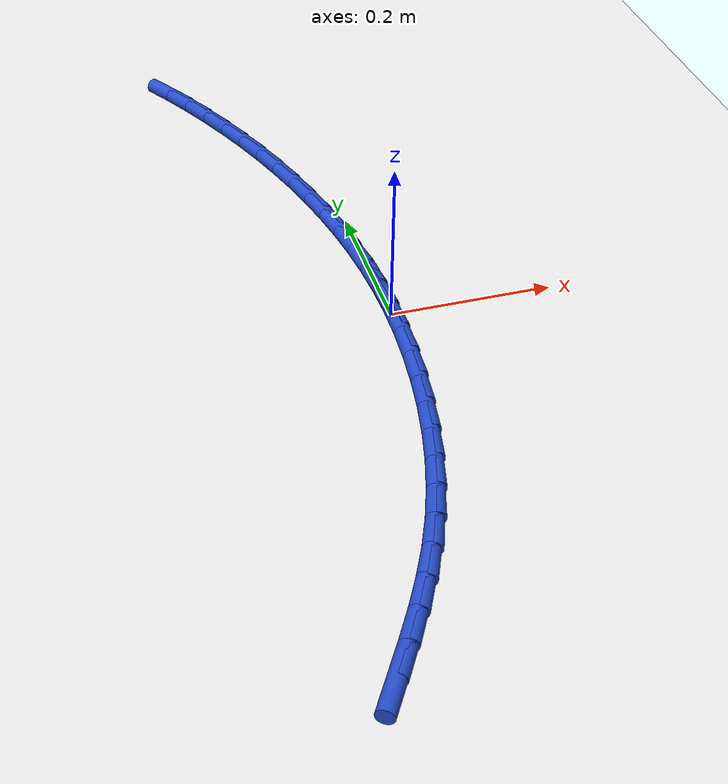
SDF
<sdf version="1.6">
 <world name="default">
  <model name="ground_plane">
   <static>1</static>
   <link name="link">
    <collision name="collision">
     <geometry><plane><normal>0 0 1</normal><size>100 100</size></plane></geometry>
     <surface><friction><ode><mu>100</mu><mu2>50</mu2></ode></friction></surface>
    </collision>
    <visual name="visual">
     <cast_shadows>0</cast_shadows>
     <geometry><plane><normal>0 0 1</normal><size>100 100</size></plane></geometry>
     <material>
      <script><uri>file://media/materials/scripts/gazebo.material</uri><name>Gazebo/WhiteGlow</name></script>
     </material>
    </visual>
   </link>
  </model>
  <model name="line">
   <link name="link_0">
    <pose>4.336808689942018e-18 -4.163336342344337e-17 0.01 0 1.57 -1.5419361502482747</pose>
    <collision name="collision">
     <geometry><cylinder><radius>0.01</radius><length>0.08</length></cylinder></geometry>
    </collision>
    <visual name="visual">
     <material>
      <script><name>Gazebo/Blue</name><uri>file://media/materials/scripts/gazebo.material</uri></script>
     </material>
     <geometry><cylinder><radius>0.01</radius><length>0.08</length></cylinder></geometry>
    </visual>
   </link>
   <link name="link_1">
    <pose>-0.001241835568871606 0.0430174350707382 0.01 0 1.57 -1.4992616446270697</pose>
    <collision name="collision">
     <geometry><cylinder><radius>0.01</radius><length>0.08</length></cylinder></geometry>
    </collision>
    <visual name="visual">
     <material>
      <script><name>Gazebo/Blue</name><uri>file://media/materials/scripts/gazebo.material</uri></script>
     </material>
     <geometry><cylinder><radius>0.01</radius><length>0.08</length></cylinder></geometry>
    </visual>
   </link>
   <link name="link_2">
    <pose>-0.0042969841570499896 0.08565319491945013 0.01 0 1.57 -1.457431250953014</pose>
    <collision name="collision">
     <geometry><cylinder><radius>0.01</radius><length>0.08</length></cylinder></geometry>
    </collision>
    <visual name="visual">
     <material>
      <script><name>Gazebo/Blue</name><uri>file://media/materials/scripts/gazebo.material</uri></script>
     </material>
     <geometry><cylinder><radius>0.01</radius><length>0.08</length></cylinder></geometry>
    </visual>
   </link>
   <link name="link_3">
    <pose>-0.009108326376786758 0.12791235886338106 0.01 0 1.57 -1.4166043514242672</pose>
    <collision name="collision">
     <geometry><cylinder><radius>0.01</radius><length>0.08</length></cylinder></geometry>
    </collision>
    <visual name="visual">
     <material>
      <script><name>Gazebo/Blue</name><uri>file://media/materials/scripts/gazebo.material</uri></script>
     </material>
     <geometry><cylinder><radius>0.01</radius><length>0.08</length></cylinder></geometry>
    </visual>
   </link>
   <link name="link_4">
    <pose>-0.015618742840333556 0.16980000621977662 0.01 0 1.57 -1.3769202140500478</pose>
    <collision name="collision">
     <geometry><cylinder><radius>0.01</radius><length>0.08</length></cylinder></geometry>
    </collision>
    <visual name="visual">
     <material>
      <script><name>Gazebo/Blue</name><uri>file://media/materials/scripts/gazebo.material</uri></script>
     </material>
     <geometry><cylinder><radius>0.01</radius><length>0.08</length></cylinder></geometry>
    </visual>
   </link>
   <link name="link_5">
    <pose>-0.023771114159941986 0.21132121630588213 0.01 0 1.57 -1.3384965799225563</pose>
    <collision name="collision">
     <geometry><cylinder><radius>0.01</radius><length>0.08</length></cylinder></geometry>
    </collision>
    <visual name="visual">
     <material>
      <script><name>Gazebo/Blue</name><uri>file://media/materials/scripts/gazebo.material</uri></script>
     </material>
     <geometry><cylinder><radius>0.01</radius><length>0.08</length></cylinder></geometry>
    </visual>
   </link>
   <link name="link_6">
    <pose>-0.03350832094786368 0.2524810684389431 0.01 0 1.57 -1.3014292340319913</pose>
    <collision name="collision">
     <geometry><cylinder><radius>0.01</radius><length>0.08</length></cylinder></geometry>
    </collision>
    <visual name="visual">
     <material>
      <script><name>Gazebo/Blue</name><uri>file://media/materials/scripts/gazebo.material</uri></script>
     </material>
     <geometry><cylinder><radius>0.01</radius><length>0.08</length></cylinder></geometry>
    </visual>
   </link>
   <link name="link_7">
    <pose>-0.04477324381635026 0.293284641936205 0.01 0 1.57 -1.2657924447633824</pose>
    <collision name="collision">
     <geometry><cylinder><radius>0.01</radius><length>0.08</length></cylinder></geometry>
    </collision>
    <visual name="visual">
     <material>
      <script><name>Gazebo/Blue</name><uri>file://media/materials/scripts/gazebo.material</uri></script>
     </material>
     <geometry><cylinder><radius>0.01</radius><length>0.08</length></cylinder></geometry>
    </visual>
   </link>
   <link name="link_8">
    <pose>-0.05750876337765335 0.33373701611491324 0.01 0 1.57 -1.2315676038876533</pose>
    <collision name="collision">
     <geometry><cylinder><radius>0.01</radius><length>0.08</length></cylinder></geometry>
    </collision>
    <visual name="visual">
     <material>
      <script><name>Gazebo/Blue</name><uri>file://media/materials/scripts/gazebo.material</uri></script>
     </material>
     <geometry><cylinder><radius>0.01</radius><length>0.08</length></cylinder></geometry>
    </visual>
   </link>
   <link name="link_9">
    <pose>-0.07165866310954422 0.3738365618099308 0.01 0 1.57 -1.1981974402237439</pose>
    <collision name="collision">
     <geometry><cylinder><radius>0.01</radius><length>0.08</length></cylinder></geometry>
    </collision>
    <visual name="visual">
     <material>
      <script><name>Gazebo/Blue</name><uri>file://media/materials/scripts/gazebo.material</uri></script>
     </material>
     <geometry><cylinder><radius>0.01</radius><length>0.08</length></cylinder></geometry>
    </visual>
   </link>
   <link name="link_10">
    <pose>-0.08717352553571332 0.4135311315023082 0.01 0 1.57 -1.165316105262385</pose>
    <collision name="collision">
     <geometry><cylinder><radius>0.01</radius><length>0.08</length></cylinder></geometry>
    </collision>
    <visual name="visual">
     <material>
      <script><name>Gazebo/Blue</name><uri>file://media/materials/scripts/gazebo.material</uri></script>
     </material>
     <geometry><cylinder><radius>0.01</radius><length>0.08</length></cylinder></geometry>
    </visual>
   </link>
   <link name="link_11">
    <pose>-0.10400703066744613 0.4527455626830358 0.01 0 1.57 -1.132789994508953</pose>
    <collision name="collision">
     <geometry><cylinder><radius>0.01</radius><length>0.08</length></cylinder></geometry>
    </collision>
    <visual name="visual">
     <material>
      <script><name>Gazebo/Blue</name><uri>file://media/materials/scripts/gazebo.material</uri></script>
     </material>
     <geometry><cylinder><radius>0.01</radius><length>0.08</length></cylinder></geometry>
    </visual>
   </link>
   <link name="link_12">
    <pose>-0.12211287423397113 0.49140457605545124 0.01 0 1.57 -1.1004872258329634</pose>
    <collision name="collision">
     <geometry><cylinder><radius>0.01</radius><length>0.08</length></cylinder></geometry>
    </collision>
    <visual name="visual">
     <material>
      <script><name>Gazebo/Blue</name><uri>file://media/materials/scripts/gazebo.material</uri></script>
     </material>
     <geometry><cylinder><radius>0.01</radius><length>0.08</length></cylinder></geometry>
    </visual>
   </link>
   <link name="link_13">
    <pose>-0.14144475196451692 0.5294328923228926 0.01 0 1.57 -1.0682757105273728</pose>
    <collision name="collision">
     <geometry><cylinder><radius>0.01</radius><length>0.08</length></cylinder></geometry>
    </collision>
    <visual name="visual">
     <material>
      <script><name>Gazebo/Blue</name><uri>file://media/materials/scripts/gazebo.material</uri></script>
     </material>
     <geometry><cylinder><radius>0.01</radius><length>0.08</length></cylinder></geometry>
    </visual>
   </link>
   <link name="link_14">
    <pose>-0.16195635958831195 0.5667552321886977 0.01 0 1.57 -1.036022394601772</pose>
    <collision name="collision">
     <geometry><cylinder><radius>0.01</radius><length>0.08</length></cylinder></geometry>
    </collision>
    <visual name="visual">
     <material>
      <script><name>Gazebo/Blue</name><uri>file://media/materials/scripts/gazebo.material</uri></script>
     </material>
     <geometry><cylinder><radius>0.01</radius><length>0.08</length></cylinder></geometry>
    </visual>
   </link>
   <link name="link_167">
    <pose>-0.15122825440765614 -0.5099026027851683 0.01 0 1.57 1.0141885390010972</pose>
    <collision name="collision">
     <geometry><cylinder><radius>0.01</radius><length>0.08</length></cylinder></geometry>
    </collision>
    <visual name="visual">
     <material>
      <script><name>Gazebo/Blue</name><uri>file://media/materials/scripts/gazebo.material</uri></script>
     </material>
     <geometry><cylinder><radius>0.01</radius><length>0.08</length></cylinder></geometry>
    </visual>
   </link>
   <link name="link_168">
    <pose>-0.12944939169763944 -0.47490152004638836 0.01 0 1.57 1.035071414281225</pose>
    <collision name="collision">
     <geometry><cylinder><radius>0.01</radius><length>0.08</length></cylinder></geometry>
    </collision>
    <visual name="visual">
     <material>
      <script><name>Gazebo/Blue</name><uri>file://media/materials/scripts/gazebo.material</uri></script>
     </material>
     <geometry><cylinder><radius>0.01</radius><length>0.08</length></cylinder></geometry>
    </visual>
   </link>
   <link name="link_169">
    <pose>-0.10902998574507496 -0.44050417784824303 0.01 0 1.57 1.068428209791736</pose>
    <collision name="collision">
     <geometry><cylinder><radius>0.01</radius><length>0.08</length></cylinder></geometry>
    </collision>
    <visual name="visual">
     <material>
      <script><name>Gazebo/Blue</name><uri>file://media/materials/scripts/gazebo.material</uri></script>
     </material>
     <geometry><cylinder><radius>0.01</radius><length>0.08</length></cylinder></geometry>
    </visual>
   </link>
   <link name="link_170">
    <pose>-0.09010302420275382 -0.40605276903844195 0.01 0 1.57 1.1135418270483937</pose>
    <collision name="collision">
     <geometry><cylinder><radius>0.01</radius><length>0.08</length></cylinder></geometry>
    </collision>
    <visual name="visual">
     <material>
      <script><name>Gazebo/Blue</name><uri>file://media/materials/scripts/gazebo.material</uri></script>
     </material>
     <geometry><cylinder><radius>0.01</radius><length>0.08</length></cylinder></geometry>
    </visual>
   </link>
   <link name="link_171">
    <pose>-0.07280149472346807 -0.3708894864646965 0.01 0 1.57 1.1685230075346522</pose>
    <collision name="collision">
     <geometry><cylinder><radius>0.01</radius><length>0.08</length></cylinder></geometry>
    </collision>
    <visual name="visual">
     <material>
      <script><name>Gazebo/Blue</name><uri>file://media/materials/scripts/gazebo.material</uri></script>
     </material>
     <geometry><cylinder><radius>0.01</radius><length>0.08</length></cylinder></geometry>
    </visual>
   </link>
   <link name="link_172">
    <pose>-0.05725819281803977 -0.3343578825918233 0.01 0 1.57 1.2274087305797905</pose>
    <collision name="collision">
     <geometry><cylinder><radius>0.01</radius><length>0.08</length></cylinder></geometry>
    </collision>
    <visual name="visual">
     <material>
      <script><name>Gazebo/Blue</name><uri>file://media/materials/scripts/gazebo.material</uri></script>
     </material>
     <geometry><cylinder><radius>0.01</radius><length>0.08</length></cylinder></geometry>
    </visual>
   </link>
   <link name="link_173">
    <pose>-0.04356804915952417 -0.2960694455235811 0.01 0 1.57 1.2823014769312204</pose>
    <collision name="collision">
     <geometry><cylinder><radius>0.01</radius><length>0.08</length></cylinder></geometry>
    </collision>
    <visual name="visual">
     <material>
      <script><name>Gazebo/Blue</name><uri>file://media/materials/scripts/gazebo.material</uri></script>
     </material>
     <geometry><cylinder><radius>0.01</radius><length>0.08</length></cylinder></geometry>
    </visual>
   </link>
   <link name="link_174">
    <pose>-0.031742880360690756 -0.2562237873373359 0.01 0 1.57 1.3331975061128087</pose>
    <collision name="collision">
     <geometry><cylinder><radius>0.01</radius><length>0.08</length></cylinder></geometry>
    </collision>
    <visual name="visual">
     <material>
      <script><name>Gazebo/Blue</name><uri>file://media/materials/scripts/gazebo.material</uri></script>
     </material>
     <geometry><cylinder><radius>0.01</radius><length>0.08</length></cylinder></geometry>
    </visual>
   </link>
   <link name="link_175">
    <pose>-0.02178346607116425 -0.2150986188412699 0.01 0 1.57 1.3810017026007992</pose>
    <collision name="collision">
     <geometry><cylinder><radius>0.01</radius><length>0.08</length></cylinder></geometry>
    </collision>
    <visual name="visual">
     <material>
      <script><name>Gazebo/Blue</name><uri>file://media/materials/scripts/gazebo.material</uri></script>
     </material>
     <geometry><cylinder><radius>0.01</radius><length>0.08</length></cylinder></geometry>
    </visual>
   </link>
   <link name="link_176">
    <pose>-0.013690585940569207 -0.1729716508435643 0.01 0 1.57 1.4265219152527129</pose>
    <collision name="collision">
     <geometry><cylinder><radius>0.01</radius><length>0.08</length></cylinder></geometry>
    </collision>
    <visual name="visual">
     <material>
      <script><name>Gazebo/Blue</name><uri>file://media/materials/scripts/gazebo.material</uri></script>
     </material>
     <geometry><cylinder><radius>0.01</radius><length>0.08</length></cylinder></geometry>
    </visual>
   </link>
   <link name="link_177">
    <pose>-0.007465019618530667 -0.13012059415240293 0.01 0 1.57 1.470493615648115</pose>
    <collision name="collision">
     <geometry><cylinder><radius>0.01</radius><length>0.08</length></cylinder></geometry>
    </collision>
    <visual name="visual">
     <material>
      <script><name>Gazebo/Blue</name><uri>file://media/materials/scripts/gazebo.material</uri></script>
     </material>
     <geometry><cylinder><radius>0.01</radius><length>0.08</length></cylinder></geometry>
    </visual>
   </link>
   <link name="link_178">
    <pose>-0.0031075467546731452 -0.08682315957596702 0.01 0 1.57 1.5136049572326453</pose>
    <collision name="collision">
     <geometry><cylinder><radius>0.01</radius><length>0.08</length></cylinder></geometry>
    </collision>
    <visual name="visual">
     <material>
      <script><name>Gazebo/Blue</name><uri>file://media/materials/scripts/gazebo.material</uri></script>
     </material>
     <geometry><cylinder><radius>0.01</radius><length>0.08</length></cylinder></geometry>
    </visual>
   </link>
   <link name="link_179">
    <pose>-0.0006189469986213562 -0.043357057922438685 0.01 0 1.57 1.5565217198930852</pose>
    <collision name="collision">
     <geometry><cylinder><radius>0.01</radius><length>0.08</length></cylinder></geometry>
    </collision>
    <visual name="visual">
     <material>
      <script><name>Gazebo/Blue</name><uri>file://media/materials/scripts/gazebo.material</uri></script>
     </material>
     <geometry><cylinder><radius>0.01</radius><length>0.08</length></cylinder></geometry>
    </visual>
   </link>
   <link name="link_180">
    <pose>3.469446951953614e-18 -6.245004513516506e-17 0.01 0 1.57 -1.5416801316590554</pose>
    <collision name="collision">
     <geometry><cylinder><radius>0.01</radius><length>0.08</length></cylinder></geometry>
    </collision>
    <visual name="visual">
     <material>
      <script><name>Gazebo/Blue</name><uri>file://media/materials/scripts/gazebo.material</uri></script>
     </material>
     <geometry><cylinder><radius>0.01</radius><length>0.08</length></cylinder></geometry>
    </visual>
   </link>
   <link name="link_181">
    <pose>-0.001251485408433773 0.042970303383166764 0.01 0 1.57 -1.5416801316590554</pose>
    <collision name="collision">
     <geometry><cylinder><radius>0.01</radius><length>0.08</length></cylinder></geometry>
    </collision>
    <visual name="visual">
     <material>
      <script><name>Gazebo/Blue</name><uri>file://media/materials/scripts/gazebo.material</uri></script>
     </material>
     <geometry><cylinder><radius>0.01</radius><length>0.08</length></cylinder></geometry>
    </visual>
   </link>
  </model>
 </world>
</sdf>
